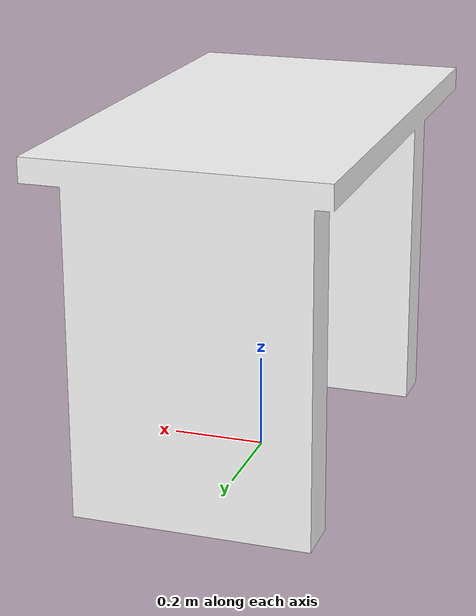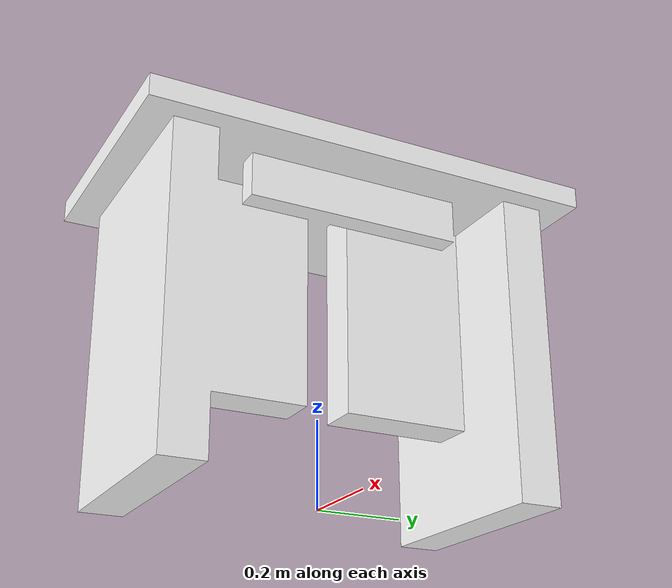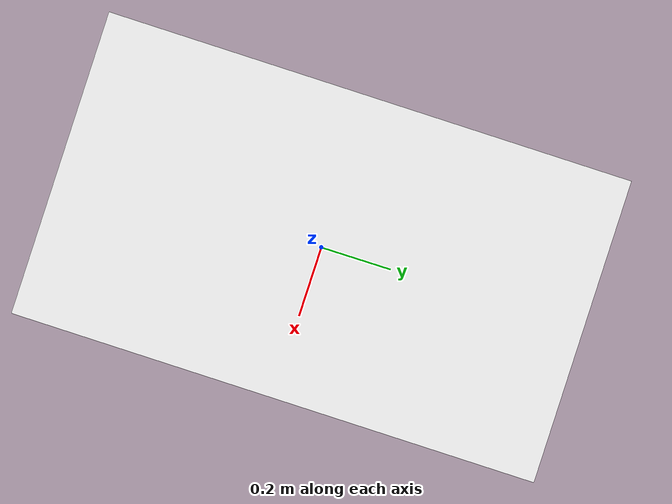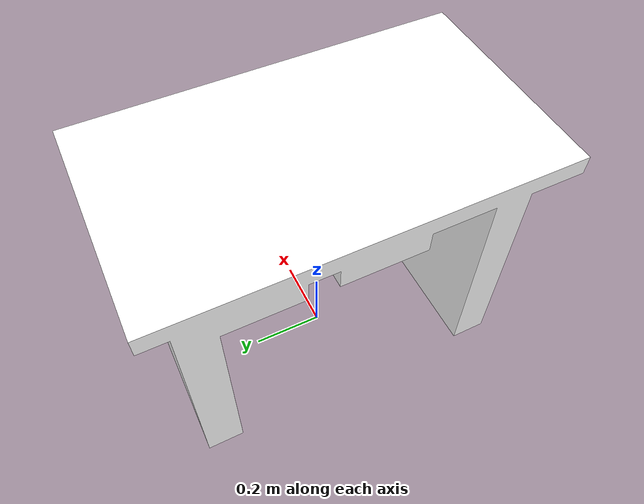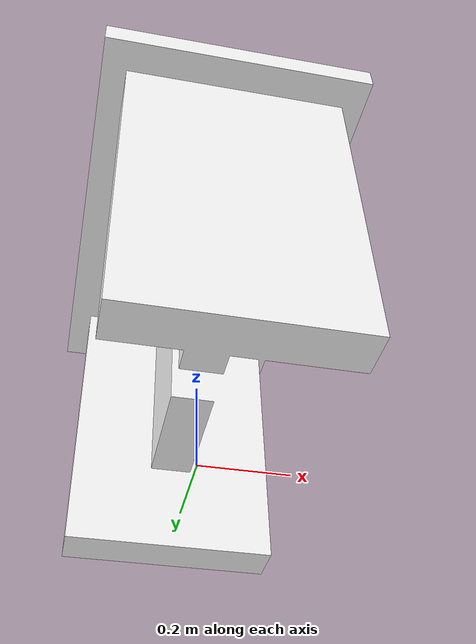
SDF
<?xml version="1.0" ?>
<sdf version="1.5">
  <model name="table_4">
    <static>true</static>
    <link name="table_4">
      <collision name="table_4">
        <pose>0 0 0 0 0 0</pose>
        <geometry>
          <mesh>
            <uri>model://table_4/meshes/model.dae</uri>
          </mesh>
        </geometry>
      </collision>

      <visual name="table_4">
      <cast_shadows>true</cast_shadows>
        <geometry>
          <mesh>
          <uri>model://table_4/meshes/model.dae</uri>
        </mesh>
        </geometry>
      </visual>
    </link>
  </model>
</sdf>
